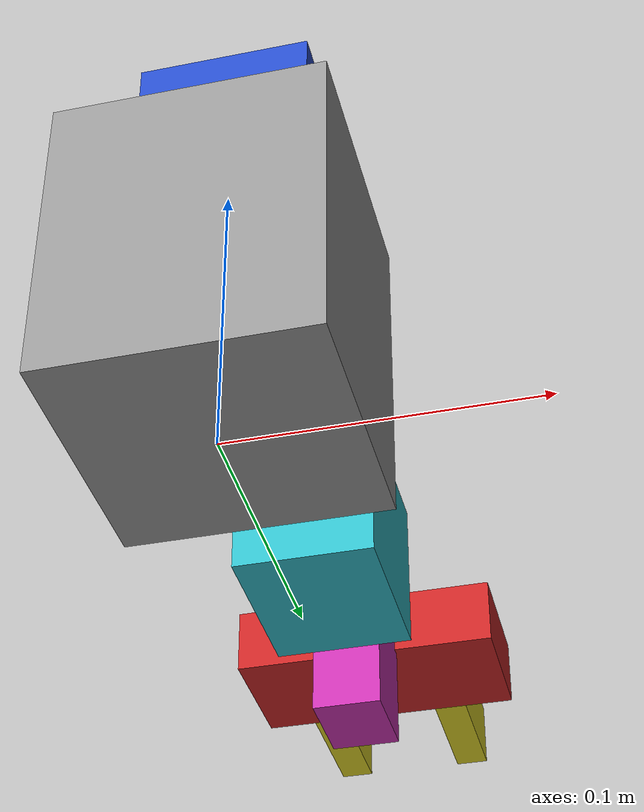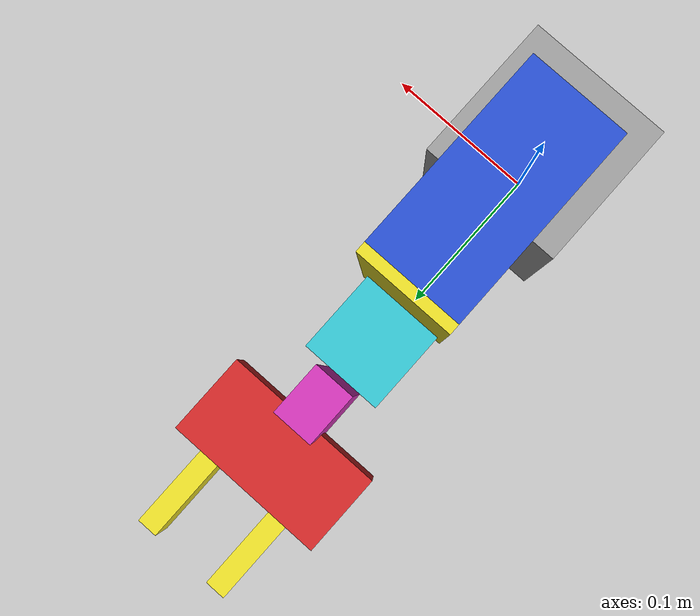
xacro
<?xml version="1.0"?>
<robot xmlns:xacro="http://www.ros.org/wiki/xacro">

    <!-- For the Base which is not static -->
    <xacro:property name="arm_base_length" value="0.088" />
    <xacro:property name="arm_base_width" value="0.090" />
    <xacro:property name="arm_base_height" value="0.105" />

    <!-- For First Joint -->
    <xacro:property name="link1_length" value="0.0254" />
    <xacro:property name="link1_width" value="0.05842" />
    <xacro:property name="link1_height" value="0.0254" />

    <!-- For Second -->
    <xacro:property name="link2_width" value="0.05842" />
    <xacro:property name="link2_height" value="0.12"/>
    <xacro:property name="link2_length" value="0.0254" />

    <!-- For Third -->
    <xacro:property name="link3_length" value="0.0254"/>
    <xacro:property name="link3_width" value="0.05842"/>
    <xacro:property name="link3_height" value="0.1016"/>

    <!-- For Forth -->
    <xacro:property name="link4_length" value="0.0508"/>
    <xacro:property name="link4_width" value="0.05715"/>
    <xacro:property name="link4_height" value="0.0635"/>

    <!-- For Fifth -->
    <xacro:property name="link5_length" value="0.0254"/>
    <xacro:property name="link5_width" value="0.03302"/>
    <xacro:property name="link5_height" value="0.1016"/>

    <!-- For sixth -->
    <xacro:property name="hand_length" value="0.05842"/>
    <xacro:property name="hand_width" value="0.1016"/>
    <xacro:property name="hand_height" value="0.0254"/>

    <!-- Links definations -->

    <!-- FOOTPRINT -->
    <link name="arm_base_footprint" />

    <!-- BASE LINK STATIC -->
    <link name="arm_base_link">
        <visual>
            <geometry>
                <box size="${arm_base_length} ${arm_base_width} ${arm_base_height}" />
            </geometry>
            <origin xyz="0 0 ${arm_base_height / 2.0}" rpy="0 0 0" />
            <material name="grey" />
        </visual>

        <collision>
            <geometry>
                <box size="${arm_base_length} ${arm_base_width} ${arm_base_height}" />
            </geometry>
            <origin xyz="0 0 ${arm_base_height / 2.0}" rpy="0 0 0" />
        </collision>

        <xacro:box_inertia m="0.5" l="${2*arm_base_length}" w="${2*arm_base_width}" h="${2*arm_base_height}"
                           xyz="0 0 ${arm_base_height / 2.0}" rpy="0 0 0" />
    </link>

    <!-- LINK1 This is between first servos1 and 2 -->
    <link name="link1">
        <visual>
            <geometry>
                <box size="${link1_length} ${link1_width} ${link1_height}" />
            </geometry>
            <origin xyz="0 ${link1_width * 0.4} ${link1_height / 2.0}" rpy="0 0 0" />
            <material name="green" />
        </visual>

        <collision>
            <geometry>
                <box size="${link1_length} ${link1_width} ${link1_height}" />
            </geometry>
            <origin xyz="0 ${link1_width * 0.4} ${link1_height / 2.0}" rpy="0 0 0" />
        </collision>

        <xacro:box_inertia m="0.5" l="${2*link1_length}" w="${2*link1_width}" h="${2*link1_height}"
                           xyz="0 ${link1_width * 0.4} ${link1_height / 2.0}" rpy="0 0 0" />
    </link>

    <!-- LINK2 This is between servos2 and 3 -->
    <link name="link2">
        <visual>
            <geometry>
                <box size="${link2_length} ${link2_width} ${link2_height}" />
            </geometry>
            <origin xyz="${-link2_width/2.0} ${link2_height*0.4} ${link2_length/2.0}" rpy="0 -1.5708 1.5708" />
            <material name="blue" />
        </visual>

        <collision>
            <geometry>
                <box size="${link2_length} ${link2_width} ${link2_height*0.7}" />
            </geometry>
            <origin xyz="${-link2_width/2.0} ${link2_height*0.4} ${link2_length/2.0}" rpy="0 -1.5708 1.5708" />
        </collision>

        <xacro:box_inertia m="0.5" l="${2*link2_length}" w="${2*link2_width}" h="${2*link2_height}"
                           xyz="${-link2_width/2.0} ${link2_height*0.4} ${link2_length/2.0}" rpy="0 -1.5708 1.5708" />
    </link>

    <!-- LINK3 This is between servos3 and 4 -->
    <link name="link3">
        <visual>
            <geometry>
                <box size="${link3_length} ${link3_width} ${link3_height}" />
            </geometry>
            <origin xyz="${link2_width/2.0} 0 ${-link3_height/2.0}" rpy="0 0 1.5708" />
            <material name="yellow" />
        </visual>

        <collision>
            <geometry>
                <box size="${link3_length} ${link3_width} ${link3_height}" />
            </geometry>
            <origin xyz="${link2_width/2.0} 0 ${-link3_height/2.0}" rpy="0 0 1.5708" />
        </collision>

        <xacro:box_inertia m="0.5" l="${2*link3_length}" w="${2*link3_width}" h="${2*link3_height}"
                           xyz="${link2_width/2.0} 0 ${-link3_height/2.0}" rpy="0 0 1.5708" />
    </link>

    <!-- LINK4 This is between servos4 and 5 -->
    <link name="link4">
        <visual>
            <geometry>
                <box size="${link4_length} ${link4_width} ${link4_height}" />
            </geometry>
            <origin xyz="${link4_width/2.0} ${link4_height/2.0} 0" rpy="1.5708 0 0" />
            <material name="cyan" />
        </visual>

        <collision>
            <geometry>
                <box size="${link4_length} ${link4_width} ${link4_height*0.8}" />
            </geometry>
            <origin xyz="${link4_width/2.0} ${link4_height/1.6} 0" rpy="1.5708 0 0" />
        </collision>

        <xacro:box_inertia m="0.5" l="${2*link4_length}" w="${2*link4_width}" h="${2*link4_height}"
                           xyz="${link4_width/2.0} ${link4_height/2.0} 0" rpy="1.5708 0 0" />
    </link>

    <!-- LINK5 This is between servos5 and 6 -->
    <link name="link5">
        <visual>
            <geometry>
                <box size="${link5_length} ${link5_width} ${link5_height}" />
            </geometry>
            <origin xyz="0 ${link4_height * 0.2} 0" rpy="0 0 0" />
            <material name="magenta" />
        </visual>

        <collision>
            <geometry>
                <box size="${link5_length} ${link5_width} ${link5_height}" />
            </geometry>
            <origin xyz="0 ${link4_height * 0.2} 0" rpy="0 0 0" />
        </collision>

        <xacro:box_inertia m="0.5" l="${2*link5_length}" w="${2*link5_width}" h="${2*link5_height}"
                           xyz="0 ${link4_height * 0.2} 0" rpy="0 0 0" />
    </link>

    <!-- hand This is between servos5 and 6 -->
    <link name="hand">
        <visual>
            <geometry>
                <box size="${hand_width} ${hand_width/2} ${hand_height}" />
            </geometry>
            <origin xyz="0 ${hand_width/2.0} 0" rpy="0 0 0" />
            <material name="red" />
        </visual>

        <collision>
            <geometry>
                <box size="${hand_width} ${hand_width/2} ${hand_height}" />
            </geometry>
            <origin xyz="0 ${hand_width/2.0} 0" rpy="0 0 0" />
        </collision>

        <xacro:box_inertia m="0.5" l="${hand_width}" w="${hand_width}" h="${2*hand_height}"
                           xyz="0 0 0" rpy="0 0 0" />
    </link>

    <link name="hand_leftfinger">
        <visual>
            <geometry>
                <box size="${hand_height/2} ${hand_width/2} ${hand_height}" />
            </geometry>
            <origin xyz="${-hand_height} ${hand_width} 0" rpy="0 0 0" />
            <material name="yellow" />
        </visual>

        <collision>
            <geometry>
                <box size="${hand_height/2} ${hand_width/2} ${hand_height}" />
            </geometry>
            <origin xyz="${-hand_height} ${hand_width} 0" rpy="0 0 0" />
        </collision>

        <xacro:box_inertia m="0.5" l="${hand_height}" w="${hand_width}" h="${2*hand_height}"
                           xyz="0 0 0" rpy="0 0 0" />
    </link>

    <link name="hand_rightfinger">
        <visual>
            <geometry>
                <box size="${hand_height/2} ${hand_width/2} ${hand_height}" />
            </geometry>
            <origin xyz="${hand_height} ${hand_width} 0" rpy="0 0 0" />
            <material name="yellow" />
        </visual>

        <collision>
            <geometry>
                <box size="${hand_height/2} ${hand_width/2} ${hand_height}" />
            </geometry>
            <origin xyz="${hand_height} ${hand_width} 0" rpy="0 0 0" />
        </collision>

        <xacro:box_inertia m="0.5" l="${hand_height}" w="${hand_width}" h="${2*hand_height}"
                           xyz="0 0 0" rpy="0 0 0" />
    </link>

    <!--JOINTS-->

    <!--JOINT FROM FOOTPRINT TO BASE-->
    <joint name="arm_base_joint" type="fixed">
        <parent link="arm_base_footprint" />
        <child link="arm_base_link" />
        <origin xyz="0 0 0" rpy="0 0 0"/>
    </joint>

    <!--JOINT FROM BASE TO LINK1-->
    <joint name="base_link1_joint" type="revolute">
        <parent link="arm_base_link" />
        <child link="link1" />
        <origin xyz="0 0 ${arm_base_height}" rpy="0 0 0"/>
        <axis xyz="0 0 1"/>
        <limit lower="0" upper="${pi}" effort="100" velocity="100"/>
        <dynamic friction="0.05" damping="0.1" />
    </joint>

    <!--JOINT FROM LINK1 TO LINK2-->
    <joint name="link1_link2_joint" type="revolute">
        <parent link="link1" />
        <child link="link2" />
        <origin xyz="${link2_width/2.0} 0 ${link1_height}" rpy="0 0 0"/>
        <axis xyz="1 0 0"/>
        <limit lower="0" upper="${pi}" effort="100" velocity="100"/>
        <dynamic friction="0.05" damping="0.1" />
    </joint>

    <!--JOINT FROM LINK2 TO LINK3-->
    <joint name="link2_link3_joint" type="revolute">
        <parent link="link2" />
        <child link="link3" />
        <origin xyz="${-link3_width} ${link3_height} ${link1_height}" rpy="0 0 0"/>
        <axis xyz="1 0 0"/>
        <limit lower="0" upper="${pi}" effort="100" velocity="100"/>
        <dynamic friction="0.05" damping="0.1" />
    </joint>

    <!--JOINT FROM LINK3 TO LINK4-->
    <joint name="link3_link4_joint" type="revolute">
        <parent link="link3" />
        <child link="link4" />
        <origin xyz="0 0 ${-link3_height}" rpy="0 0 0"/>
        <axis xyz="-1 0 0"/>
        <limit lower="0" upper="${pi}" effort="100" velocity="100"/>
        <dynamic friction="0.05" damping="0.1" />
    </joint>

    <!--JOINT FROM LINK4 TO LINK5-->
    <joint name="link4_link5_joint" type="revolute">
        <parent link="link4" />
        <child link="link5" />
        <origin xyz="${link4_width/2.0} ${link4_height/2.0 + link5_height/2.0 - link4_height * 0.2} 0" rpy="0 0 0"/>
        <axis xyz="0 1 0"/>
        <limit lower="0" upper="${pi}" effort="100" velocity="100"/>
        <dynamic friction="0.05" damping="0.1" />
    </joint>

    <!--JOINT FROM LINK5 TO HAND-->
    <joint name="link5_hand_joint" type="fixed">
        <parent link="link5" />
        <child link="hand" />
        <origin xyz="0 0 0" rpy="0 0 0"/>
    </joint>

    <joint name="hand_finger_joint1" type="prismatic">
        <parent link="hand" />
        <child link="hand_leftfinger" />
        <origin rpy="0 0 0" xyz="0 0 0" />
        <axis xyz="1 0 0" />
        <limit effort="20" lower="0.0" upper="0.019" velocity="0.2" />
    </joint>
    <joint name="hand_finger_joint2" type="prismatic">
        <parent link="hand" />
        <child link="hand_rightfinger" />
        <origin rpy="0 0 0" xyz="0 0 0" />
        <axis xyz="-1 0 0" />
        <limit effort="20" lower="0.0" upper="0.019" velocity="0.2" />
        <mimic joint="hand_finger_joint1" />
    </joint>

</robot>
